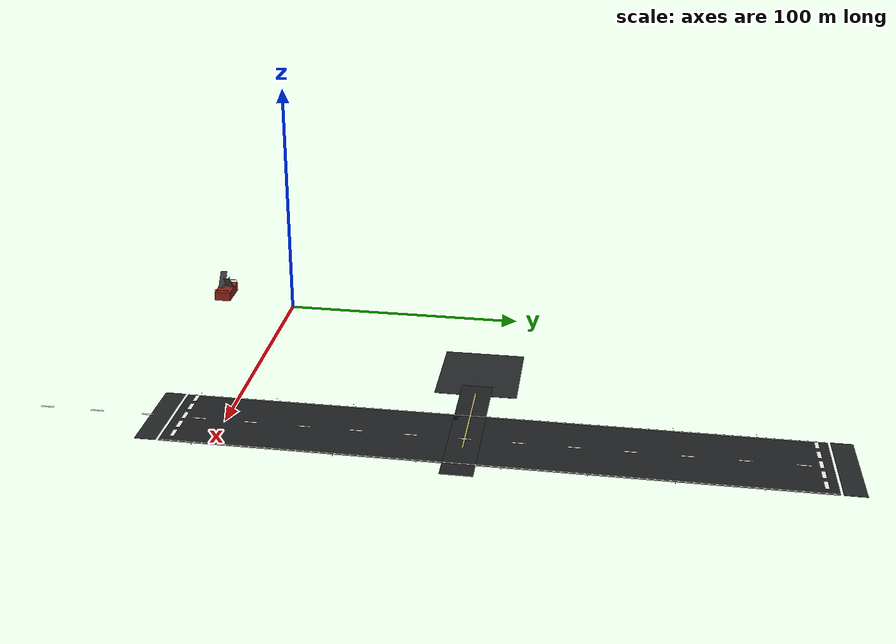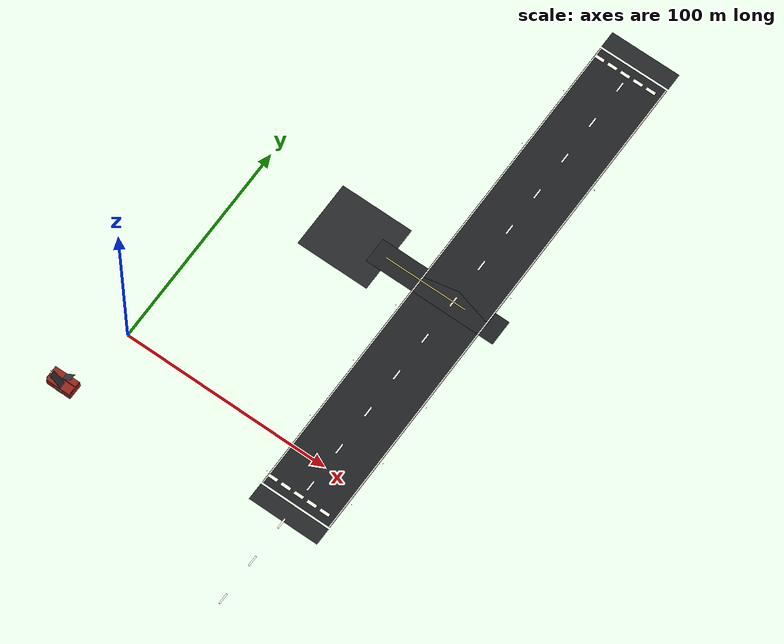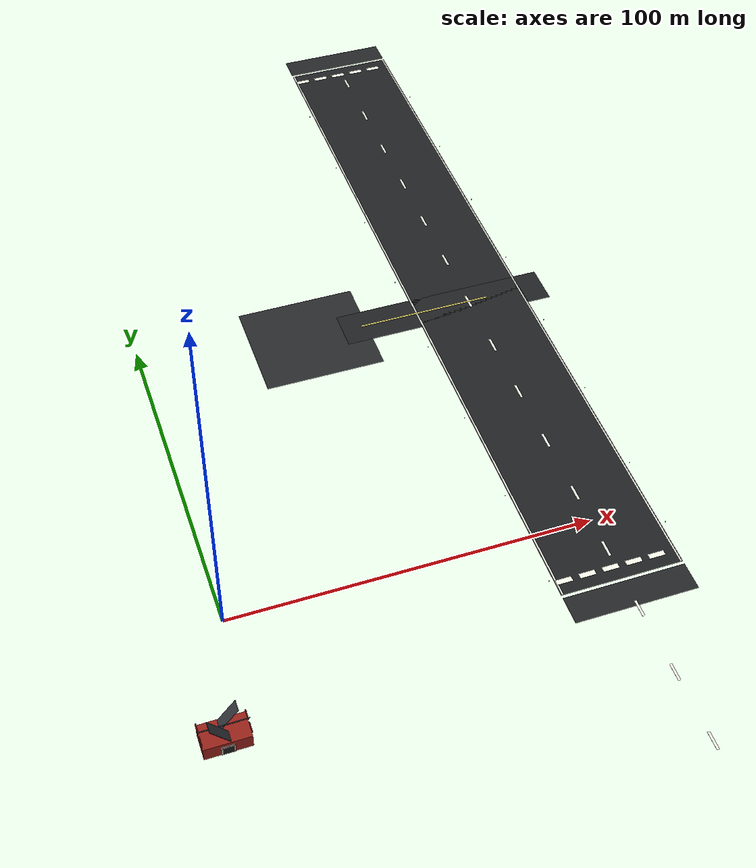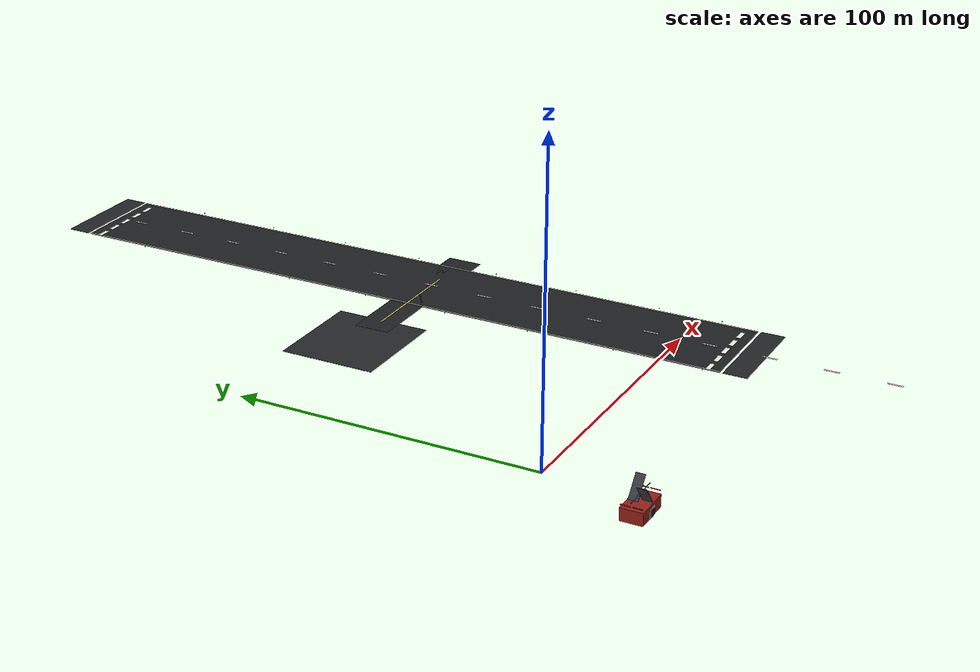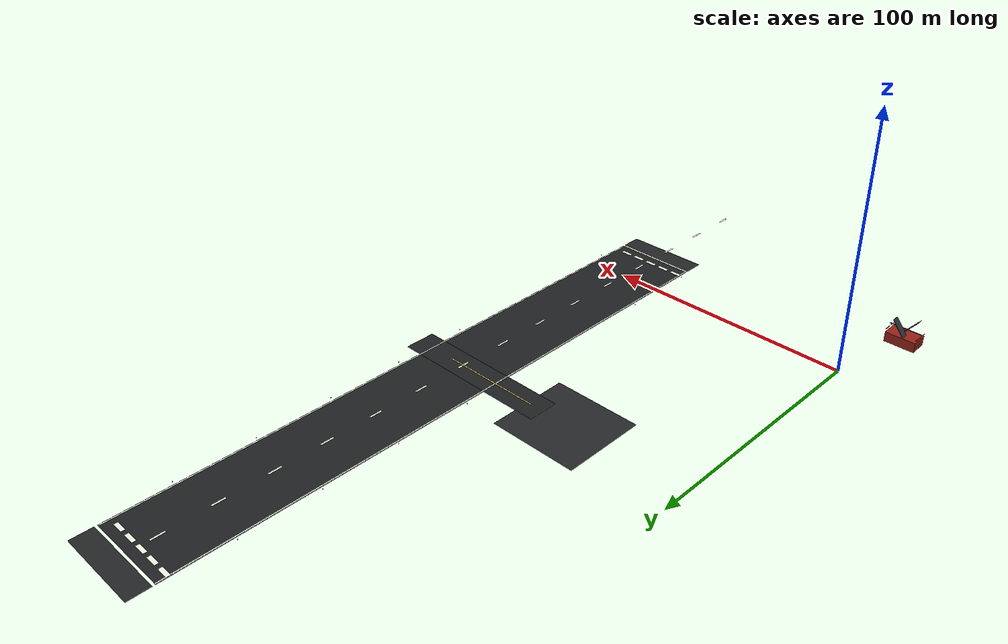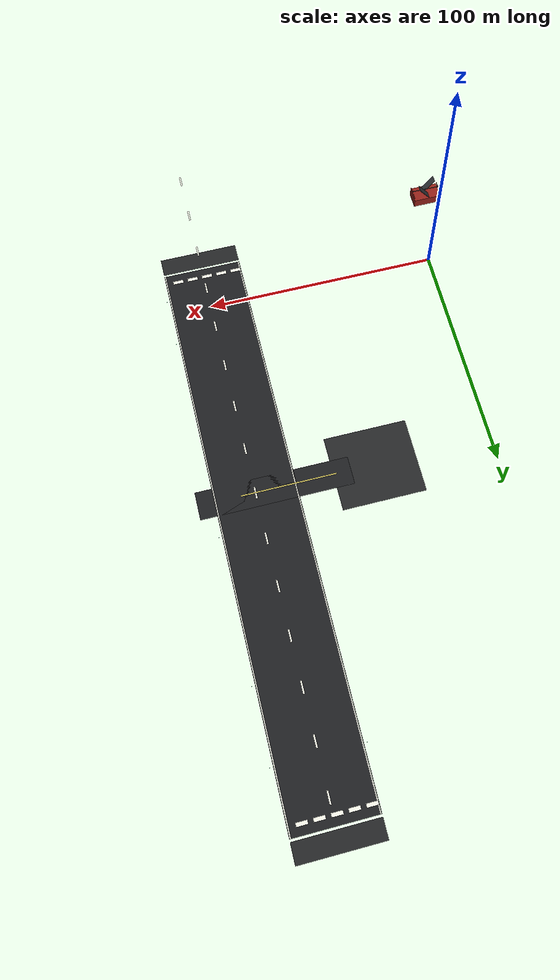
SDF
<sdf version="1.7">
 <world name="hiveflight_world">
  <include><uri>model://sun</uri><pose>80 120 180 0.35 -0.28 2.4</pose></include>
  <model name="hiveflight_airfield">
   <static>true</static>
   <link name="airfield">
    <visual name="runway">
     <pose>100 100 0.06 0 0 0</pose>
     <geometry><box><size>34 240 0.12</size></box></geometry>
     <material>
      <ambient>0.09 0.09 0.10 1</ambient>
      <diffuse>0.12 0.125 0.13 1</diffuse>
      <specular>0.15 0.15 0.15 1</specular>
     </material>
    </visual>
    <visual name="edge_line_left">
     <pose>83.4 100 0.135 0 0 0</pose>
     <geometry><box><size>0.5 240 0.02</size></box></geometry>
     <material><diffuse>0.92 0.92 0.88 1</diffuse></material>
    </visual>
    <visual name="edge_line_right">
     <pose>116.6 100 0.135 0 0 0</pose>
     <geometry><box><size>0.5 240 0.02</size></box></geometry>
     <material><diffuse>0.92 0.92 0.88 1</diffuse></material>
    </visual>
    <visual name="dash_01">
     <pose>100 -70 0.15 0 0 0</pose>
     <geometry><box><size>0.7 5 0.02</size></box></geometry>
     <material><diffuse>0.95 0.95 0.9 1</diffuse></material>
    </visual>
    <visual name="dash_02">
     <pose>100 -50 0.15 0 0 0</pose>
     <geometry><box><size>0.7 5 0.02</size></box></geometry>
     <material><diffuse>0.95 0.95 0.9 1</diffuse></material>
    </visual>
    <visual name="dash_03">
     <pose>100 -30 0.15 0 0 0</pose>
     <geometry><box><size>0.7 5 0.02</size></box></geometry>
     <material><diffuse>0.95 0.95 0.9 1</diffuse></material>
    </visual>
    <visual name="dash_04">
     <pose>100 -10 0.15 0 0 0</pose>
     <geometry><box><size>0.7 5 0.02</size></box></geometry>
     <material><diffuse>0.95 0.95 0.9 1</diffuse></material>
    </visual>
    <visual name="dash_05">
     <pose>100 10 0.15 0 0 0</pose>
     <geometry><box><size>0.7 5 0.02</size></box></geometry>
     <material><diffuse>0.95 0.95 0.9 1</diffuse></material>
    </visual>
    <visual name="dash_06">
     <pose>100 30 0.15 0 0 0</pose>
     <geometry><box><size>0.7 5 0.02</size></box></geometry>
     <material><diffuse>0.95 0.95 0.9 1</diffuse></material>
    </visual>
    <visual name="dash_07">
     <pose>100 50 0.15 0 0 0</pose>
     <geometry><box><size>0.7 5 0.02</size></box></geometry>
     <material><diffuse>0.95 0.95 0.9 1</diffuse></material>
    </visual>
    <visual name="dash_08">
     <pose>100 70 0.15 0 0 0</pose>
     <geometry><box><size>0.7 5 0.02</size></box></geometry>
     <material><diffuse>0.95 0.95 0.9 1</diffuse></material>
    </visual>
    <visual name="dash_09">
     <pose>100 90 0.15 0 0 0</pose>
     <geometry><box><size>0.7 5 0.02</size></box></geometry>
     <material><diffuse>0.95 0.95 0.9 1</diffuse></material>
    </visual>
    <visual name="dash_10">
     <pose>100 110 0.15 0 0 0</pose>
     <geometry><box><size>0.7 5 0.02</size></box></geometry>
     <material><diffuse>0.95 0.95 0.9 1</diffuse></material>
    </visual>
    <visual name="dash_11">
     <pose>100 130 0.15 0 0 0</pose>
     <geometry><box><size>0.7 5 0.02</size></box></geometry>
     <material><diffuse>0.95 0.95 0.9 1</diffuse></material>
    </visual>
    <visual name="dash_12">
     <pose>100 150 0.15 0 0 0</pose>
     <geometry><box><size>0.7 5 0.02</size></box></geometry>
     <material><diffuse>0.95 0.95 0.9 1</diffuse></material>
    </visual>
    <visual name="dash_13">
     <pose>100 170 0.15 0 0 0</pose>
     <geometry><box><size>0.7 5 0.02</size></box></geometry>
     <material><diffuse>0.95 0.95 0.9 1</diffuse></material>
    </visual>
    <visual name="dash_14">
     <pose>100 190 0.15 0 0 0</pose>
     <geometry><box><size>0.7 5 0.02</size></box></geometry>
     <material><diffuse>0.95 0.95 0.9 1</diffuse></material>
    </visual>
    <visual name="dash_15">
     <pose>100 210 0.15 0 0 0</pose>
     <geometry><box><size>0.7 5 0.02</size></box></geometry>
     <material><diffuse>0.95 0.95 0.9 1</diffuse></material>
    </visual>
    <visual name="thresh_01a">
     <pose>85.5 -16 0.15 0 0 0</pose>
     <geometry><box><size>4.5 1.5 0.02</size></box></geometry>
     <material><diffuse>0.95 0.95 0.9 1</diffuse></material>
    </visual>
    <visual name="thresh_02a">
     <pose>92.0 -16 0.15 0 0 0</pose>
     <geometry><box><size>4.5 1.5 0.02</size></box></geometry>
     <material><diffuse>0.95 0.95 0.9 1</diffuse></material>
    </visual>
    <visual name="thresh_03a">
     <pose>98.5 -16 0.15 0 0 0</pose>
     <geometry><box><size>4.5 1.5 0.02</size></box></geometry>
     <material><diffuse>0.95 0.95 0.9 1</diffuse></material>
    </visual>
    <visual name="thresh_04a">
     <pose>105.0 -16 0.15 0 0 0</pose>
     <geometry><box><size>4.5 1.5 0.02</size></box></geometry>
     <material><diffuse>0.95 0.95 0.9 1</diffuse></material>
    </visual>
    <visual name="thresh_05a">
     <pose>111.5 -16 0.15 0 0 0</pose>
     <geometry><box><size>4.5 1.5 0.02</size></box></geometry>
     <material><diffuse>0.95 0.95 0.9 1</diffuse></material>
    </visual>
    <visual name="thresh_01b">
     <pose>85.5 216 0.15 0 0 0</pose>
     <geometry><box><size>4.5 1.5 0.02</size></box></geometry>
     <material><diffuse>0.95 0.95 0.9 1</diffuse></material>
    </visual>
    <visual name="thresh_02b">
     <pose>92.0 216 0.15 0 0 0</pose>
     <geometry><box><size>4.5 1.5 0.02</size></box></geometry>
     <material><diffuse>0.95 0.95 0.9 1</diffuse></material>
    </visual>
    <visual name="thresh_03b">
     <pose>98.5 216 0.15 0 0 0</pose>
     <geometry><box><size>4.5 1.5 0.02</size></box></geometry>
     <material><diffuse>0.95 0.95 0.9 1</diffuse></material>
    </visual>
    <visual name="thresh_04b">
     <pose>105.0 216 0.15 0 0 0</pose>
     <geometry><box><size>4.5 1.5 0.02</size></box></geometry>
     <material><diffuse>0.95 0.95 0.9 1</diffuse></material>
    </visual>
    <visual name="thresh_05b">
     <pose>111.5 216 0.15 0 0 0</pose>
     <geometry><box><size>4.5 1.5 0.02</size></box></geometry>
     <material><diffuse>0.95 0.95 0.9 1</diffuse></material>
    </visual>
    <visual name="turnpad_south">
     <pose>100 -25 0.09 0 0 0</pose>
     <geometry><box><size>34 8 0.12</size></box></geometry>
     <material><ambient>0.1 0.1 0.11 1</ambient><diffuse>0.14 0.145 0.15 1</diffuse></material>
    </visual>
    <visual name="turnpad_north">
     <pose>100 225 0.09 0 0 0</pose>
     <geometry><box><size>34 8 0.12</size></box></geometry>
     <material><ambient>0.1 0.1 0.11 1</ambient><diffuse>0.14 0.145 0.15 1</diffuse></material>
    </visual>
    <visual name="taxiway">
     <pose>92 90 0.06 0 0 0</pose>
     <geometry><box><size>64 12 0.12</size></box></geometry>
     <material><ambient>0.09 0.09 0.10 1</ambient><diffuse>0.12 0.125 0.13 1</diffuse></material>
    </visual>
    <visual name="taxi_centerline">
     <pose>86 90 0.15 0 0 0</pose>
     <geometry><box><size>40 0.5 0.02</size></box></geometry>
     <material><diffuse>0.92 0.85 0.4 1</diffuse></material>
    </visual>
    <visual name="apron">
     <pose>50 90 0.05 0 0 0</pose>
     <geometry><box><size>35 32 0.1</size></box></geometry>
     <material><ambient>0.11 0.11 0.12 1</ambient><diffuse>0.15 0.155 0.16 1</diffuse></material>
    </visual>
    <visual name="re_l_01">
     <pose>81.7 -15 0.35 0 0 0</pose>
     <geometry><cylinder><radius>0.09</radius><length>0.28</length></cylinder></geometry>
     <material><diffuse>0.05 0.5 0.3 1</diffuse><emissive>0.05 0.8 0.45 1</emissive></material>
    </visual>
    <visual name="re_l_02">
     <pose>81.7 15 0.35 0 0 0</pose>
     <geometry><cylinder><radius>0.09</radius><length>0.28</length></cylinder></geometry>
     <material><diffuse>0.05 0.5 0.3 1</diffuse><emissive>0.05 0.8 0.45 1</emissive></material>
    </visual>
    <visual name="re_l_03">
     <pose>81.7 45 0.35 0 0 0</pose>
     <geometry><cylinder><radius>0.09</radius><length>0.28</length></cylinder></geometry>
     <material><diffuse>0.05 0.5 0.3 1</diffuse><emissive>0.05 0.8 0.45 1</emissive></material>
    </visual>
    <visual name="re_l_04">
     <pose>81.7 75 0.35 0 0 0</pose>
     <geometry><cylinder><radius>0.09</radius><length>0.28</length></cylinder></geometry>
     <material><diffuse>0.05 0.5 0.3 1</diffuse><emissive>0.05 0.8 0.45 1</emissive></material>
    </visual>
    <visual name="re_l_05">
     <pose>81.7 105 0.35 0 0 0</pose>
     <geometry><cylinder><radius>0.09</radius><length>0.28</length></cylinder></geometry>
     <material><diffuse>0.05 0.5 0.3 1</diffuse><emissive>0.05 0.8 0.45 1</emissive></material>
    </visual>
    <visual name="re_l_06">
     <pose>81.7 135 0.35 0 0 0</pose>
     <geometry><cylinder><radius>0.09</radius><length>0.28</length></cylinder></geometry>
     <material><diffuse>0.05 0.5 0.3 1</diffuse><emissive>0.05 0.8 0.45 1</emissive></material>
    </visual>
    <visual name="re_l_07">
     <pose>81.7 165 0.35 0 0 0</pose>
     <geometry><cylinder><radius>0.09</radius><length>0.28</length></cylinder></geometry>
     <material><diffuse>0.05 0.5 0.3 1</diffuse><emissive>0.05 0.8 0.45 1</emissive></material>
    </visual>
    <visual name="re_l_08">
     <pose>81.7 195 0.35 0 0 0</pose>
     <geometry><cylinder><radius>0.09</radius><length>0.28</length></cylinder></geometry>
     <material><diffuse>0.05 0.5 0.3 1</diffuse><emissive>0.05 0.8 0.45 1</emissive></material>
    </visual>
    <visual name="re_r_01">
     <pose>118.3 -7 0.35 0 0 0</pose>
     <geometry><cylinder><radius>0.09</radius><length>0.28</length></cylinder></geometry>
     <material><diffuse>0.05 0.5 0.3 1</diffuse><emissive>0.05 0.8 0.45 1</emissive></material>
    </visual>
    <visual name="re_r_02">
     <pose>118.3 15 0.35 0 0 0</pose>
     <geometry><cylinder><radius>0.09</radius><length>0.28</length></cylinder></geometry>
     <material><diffuse>0.05 0.5 0.3 1</diffuse><emissive>0.05 0.8 0.45 1</emissive></material>
    </visual>
    <visual name="re_r_03">
     <pose>118.3 45 0.35 0 0 0</pose>
     <geometry><cylinder><radius>0.09</radius><length>0.28</length></cylinder></geometry>
     <material><diffuse>0.05 0.5 0.3 1</diffuse><emissive>0.05 0.8 0.45 1</emissive></material>
    </visual>
    <visual name="re_r_04">
     <pose>118.3 75 0.35 0 0 0</pose>
     <geometry><cylinder><radius>0.09</radius><length>0.28</length></cylinder></geometry>
     <material><diffuse>0.05 0.5 0.3 1</diffuse><emissive>0.05 0.8 0.45 1</emissive></material>
    </visual>
    <visual name="re_r_05">
     <pose>118.3 105 0.35 0 0 0</pose>
     <geometry><cylinder><radius>0.09</radius><length>0.28</length></cylinder></geometry>
     <material><diffuse>0.05 0.5 0.3 1</diffuse><emissive>0.05 0.8 0.45 1</emissive></material>
    </visual>
    <visual name="re_r_06">
     <pose>118.3 135 0.35 0 0 0</pose>
     <geometry><cylinder><radius>0.09</radius><length>0.28</length></cylinder></geometry>
     <material><diffuse>0.05 0.5 0.3 1</diffuse><emissive>0.05 0.8 0.45 1</emissive></material>
    </visual>
    <visual name="re_r_07">
     <pose>118.3 165 0.35 0 0 0</pose>
     <geometry><cylinder><radius>0.09</radius><length>0.28</length></cylinder></geometry>
     <material><diffuse>0.05 0.5 0.3 1</diffuse><emissive>0.05 0.8 0.45 1</emissive></material>
    </visual>
    <visual name="re_r_08">
     <pose>118.3 195 0.35 0 0 0</pose>
     <geometry><cylinder><radius>0.09</radius><length>0.28</length></cylinder></geometry>
     <material><diffuse>0.05 0.5 0.3 1</diffuse><emissive>0.05 0.8 0.45 1</emissive></material>
    </visual>
   </link>
  </model>
  <model name="farm_barn">
   <static>true</static>
   <pose>-8 -33 0 0 0 0</pose>
   <link name="structure">
    <visual name="walls">
     <pose>0 0 2.0 0 0 0</pose>
     <geometry><box><size>12 7 4</size></box></geometry>
     <material><ambient>0.42 0.09 0.07 1</ambient><diffuse>0.58 0.13 0.10 1</diffuse></material>
    </visual>
    <visual name="roof_south">
     <pose>0 1.78 5.05 0 -0.90 0</pose>
     <geometry><box><size>12.6 2.95 0.16</size></box></geometry>
     <material><diffuse>0.20 0.21 0.23 1</diffuse></material>
    </visual>
    <visual name="roof_north">
     <pose>0 -1.78 5.05 0 0.90 0</pose>
     <geometry><box><size>12.6 2.95 0.16</size></box></geometry>
     <material><diffuse>0.20 0.21 0.23 1</diffuse></material>
    </visual>
    <visual name="gable_east_s">
     <pose>6.02 1.78 5.05 0 -0.90 0</pose>
     <geometry><box><size>0.3 2.95 0.16</size></box></geometry>
     <material><diffuse>0.52 0.11 0.09 1</diffuse></material>
    </visual>
    <visual name="gable_east_n">
     <pose>6.02 -1.78 5.05 0 0.90 0</pose>
     <geometry><box><size>0.3 2.95 0.16</size></box></geometry>
     <material><diffuse>0.52 0.11 0.09 1</diffuse></material>
    </visual>
    <visual name="gable_west_s">
     <pose>-6.02 1.78 5.05 0 -0.90 0</pose>
     <geometry><box><size>0.3 2.95 0.16</size></box></geometry>
     <material><diffuse>0.52 0.11 0.09 1</diffuse></material>
    </visual>
    <visual name="gable_west_n">
     <pose>-6.02 -1.78 5.05 0 0.90 0</pose>
     <geometry><box><size>0.3 2.95 0.16</size></box></geometry>
     <material><diffuse>0.52 0.11 0.09 1</diffuse></material>
    </visual>
    <visual name="ridge">
     <pose>0 0 6.28 0 0 0</pose>
     <geometry><box><size>12.7 0.24 0.14</size></box></geometry>
     <material><diffuse>0.15 0.16 0.18 1</diffuse></material>
    </visual>
    <visual name="door_trim">
     <pose>0 -3.56 1.45 0 0 0</pose>
     <geometry><box><size>3.4 0.12 2.9</size></box></geometry>
     <material><diffuse>0.85 0.83 0.78 1</diffuse></material>
    </visual>
    <visual name="door_leaf">
     <pose>0 -3.60 1.30 0 0 0</pose>
     <geometry><box><size>2.8 0.10 2.5</size></box></geometry>
     <material><diffuse>0.10 0.10 0.11 1</diffuse></material>
    </visual>
   </link>
  </model>
 </world>
</sdf>
